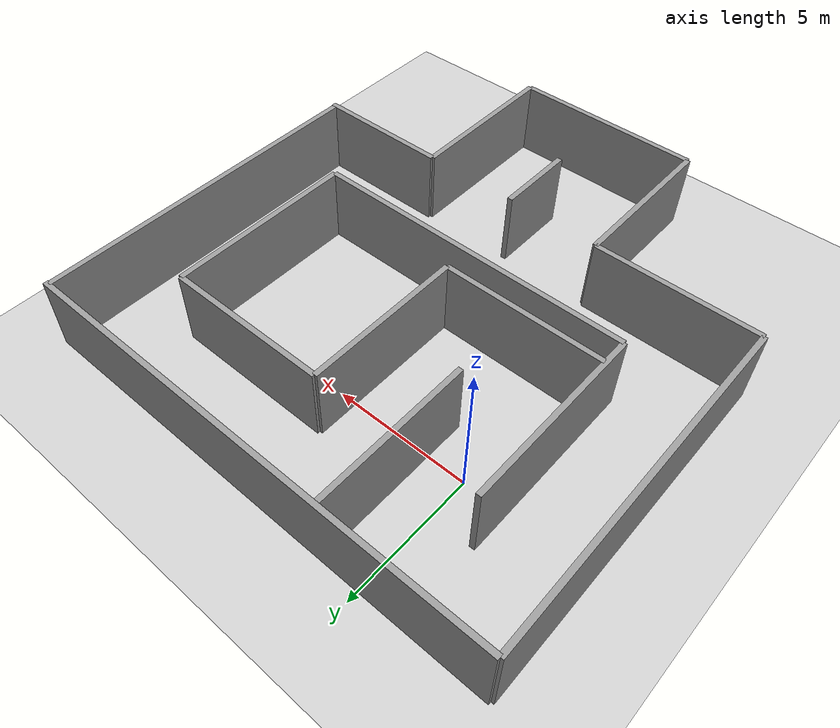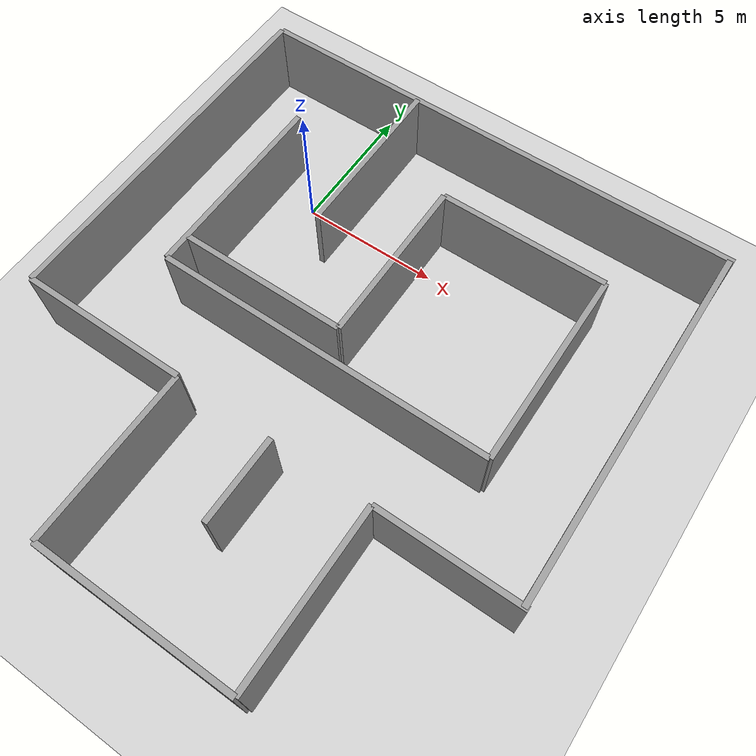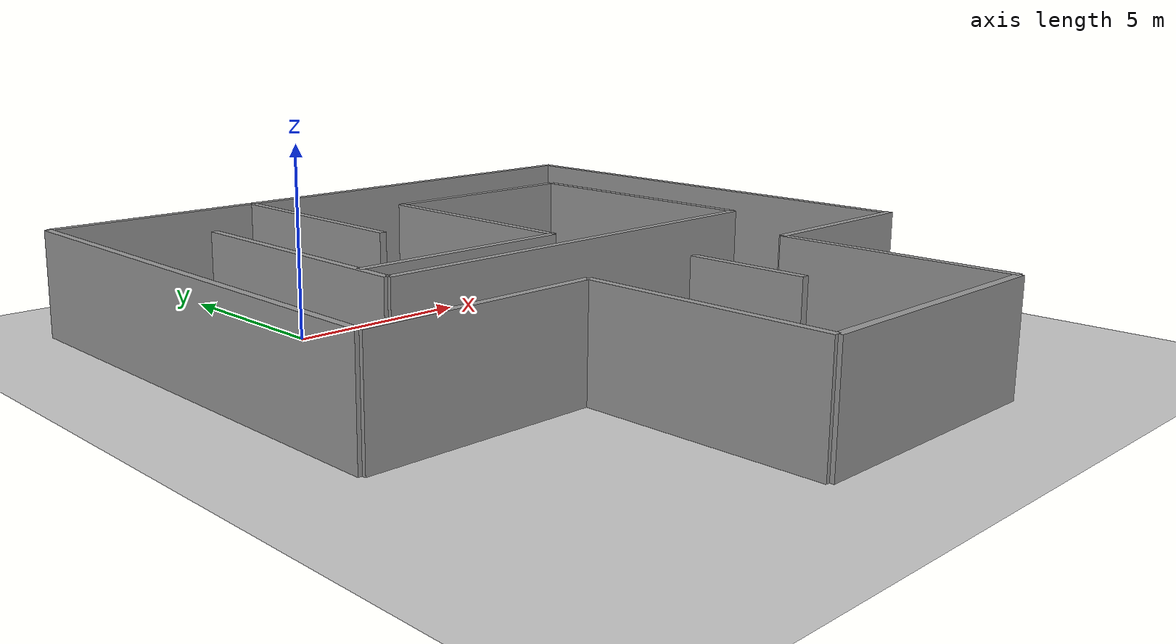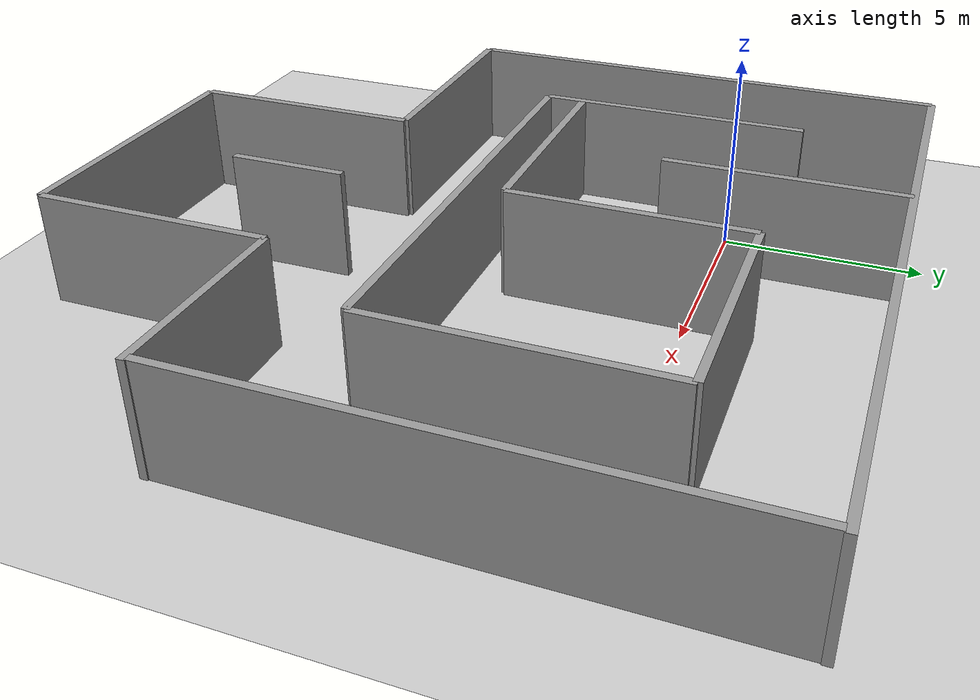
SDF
<sdf version="1.6">
 <world name="default">
  <light name="sun" type="directional">
   <pose>0 0 10 0 -0 -1.5708</pose>
   <diffuse>0.8 0.8 0.8 1</diffuse>
   <specular>0.2 0.2 0.2 1</specular>
   <attenuation>
    <range>1000</range>
    <constant>0.9</constant>
    <linear>0.01</linear>
    <quadratic>0.001</quadratic>
   </attenuation>
   <direction>-0.5 0.1 -0.9</direction>
  </light>
  <light name="user_point_light_0" type="point">
   <cast_shadows>0</cast_shadows>
   <pose>-8 -9 1 0 -0 -1.5708</pose>
   <diffuse>0.5 0.5 0.5 1</diffuse>
   <specular>0.1 0.1 0.1 1</specular>
   <attenuation>
    <range>20</range>
    <constant>0.5</constant>
    <linear>0.01</linear>
    <quadratic>0</quadratic>
   </attenuation>
   <direction>0 0 -1</direction>
  </light>
  <light name="user_point_light_1" type="point">
   <cast_shadows>0</cast_shadows>
   <pose>9 6 1 0 -0 -1.5708</pose>
   <diffuse>0.5 0.5 0.5 1</diffuse>
   <specular>0.1 0.1 0.1 1</specular>
   <attenuation>
    <range>20</range>
    <constant>0.5</constant>
    <linear>0.01</linear>
    <quadratic>0</quadratic>
   </attenuation>
   <direction>0 0 -1</direction>
  </light>
  <model name="ground_plane">
   <pose>0 0 0 0 0 -1.5708</pose>
   <static>1</static>
   <link name="link">
    <collision name="collision">
     <geometry><plane><normal>0 0 1</normal><size>100 100</size></plane></geometry>
     <surface><friction><ode><mu>100</mu><mu2>50</mu2></ode></friction></surface>
    </collision>
    <visual name="visual">
     <cast_shadows>0</cast_shadows>
     <geometry><plane><normal>0 0 1</normal><size>100 100</size></plane></geometry>
     <material>
      <script><uri>file://media/materials/scripts/gazebo.material</uri><name>Gazebo/Grey</name></script>
     </material>
    </visual>
    <velocity_decay><linear>0</linear><angular>0</angular></velocity_decay>
   </link>
  </model>
  <physics name="default_physics" default="0" type="ode">
   <max_step_size>0.001</max_step_size>
   <real_time_factor>1</real_time_factor>
   <real_time_update_rate>1000</real_time_update_rate>
  </physics>
  <scene><ambient>0.4 0.4 0.4 1</ambient><background>0.7 0.7 0.7 1</background><shadows>1</shadows></scene>
  <spherical_coordinates>
   <surface_model>EARTH_WGS84</surface_model>
   <latitude_deg>0</latitude_deg>
   <longitude_deg>0</longitude_deg>
   <elevation>0</elevation>
   <heading_deg>0</heading_deg>
  </spherical_coordinates>
  <model name="grey_wall">
   <pose>4.5 -1.5 0 0 -0 0</pose>
   <static>1</static>
   <link name="link">
    <pose>0 0 1.4 0 -0 -1.5708</pose>
    <collision name="collision"><geometry><box><size>6 0.2 2.8</size></box></geometry></collision>
    <visual name="visual">
     <cast_shadows>0</cast_shadows>
     <geometry><box><size>6 0.2 2.8</size></box></geometry>
     <material>
      <script>
       <uri>model://grey_wall/materials/scripts</uri>
       <uri>model://grey_wall/materials/textures</uri>
       <name>vrc/grey_wall</name>
      </script>
     </material>
    </visual>
    <velocity_decay><linear>0</linear><angular>0</angular></velocity_decay>
   </link>
  </model>
  <model name="grey_wall_0">
   <pose>-4.5 -2 0 0 -0 0</pose>
   <static>1</static>
   <link name="link">
    <pose>0 0 1.4 0 -0 -1.5708</pose>
    <collision name="collision"><geometry><box><size>13 0.2 2.8</size></box></geometry></collision>
    <visual name="visual">
     <cast_shadows>0</cast_shadows>
     <geometry><box><size>13 0.2 2.8</size></box></geometry>
     <material>
      <script>
       <uri>model://grey_wall/materials/scripts</uri>
       <uri>model://grey_wall/materials/textures</uri>
       <name>vrc/grey_wall13</name>
      </script>
     </material>
    </visual>
    <velocity_decay><linear>0</linear><angular>0</angular></velocity_decay>
   </link>
  </model>
  <model name="grey_wall_1">
   <pose>1.5 -4.5 0 0 -0 1.5708</pose>
   <static>1</static>
   <link name="link">
    <pose>0 0 1.4 0 -0 -1.5708</pose>
    <collision name="collision"><geometry><box><size>6 0.2 2.8</size></box></geometry></collision>
    <visual name="visual">
     <cast_shadows>0</cast_shadows>
     <geometry><box><size>6 0.2 2.8</size></box></geometry>
     <material>
      <script>
       <uri>model://grey_wall/materials/scripts</uri>
       <uri>model://grey_wall/materials/textures</uri>
       <name>vrc/grey_wall3</name>
      </script>
     </material>
    </visual>
    <velocity_decay><linear>0</linear><angular>0</angular></velocity_decay>
   </link>
  </model>
  <model name="grey_wall_2">
   <pose>-1.5 -2 0 0 -0 0</pose>
   <static>1</static>
   <link name="link">
    <pose>0 0 1.4 0 -0 -1.5708</pose>
    <collision name="collision"><geometry><box><size>7 0.2 2.8</size></box></geometry></collision>
    <visual name="visual">
     <cast_shadows>0</cast_shadows>
     <geometry><box><size>7 0.2 2.8</size></box></geometry>
     <material>
      <script>
       <uri>model://grey_wall/materials/scripts</uri>
       <uri>model://grey_wall/materials/textures</uri>
       <name>vrc/grey_wall1</name>
      </script>
     </material>
    </visual>
    <velocity_decay><linear>0</linear><angular>0</angular></velocity_decay>
   </link>
  </model>
  <model name="grey_wall_3">
   <pose>4.5 4.5 0 0 -0 1.5708</pose>
   <static>1</static>
   <link name="link">
    <pose>0 0 1.4 0 -0 -1.5708</pose>
    <collision name="collision"><geometry><box><size>18 0.2 2.8</size></box></geometry></collision>
    <visual name="visual">
     <cast_shadows>0</cast_shadows>
     <geometry><box><size>18 0.2 2.8</size></box></geometry>
     <material>
      <script>
       <uri>model://grey_wall/materials/scripts</uri>
       <uri>model://grey_wall/materials/textures</uri>
       <name>vrc/grey_wall12</name>
      </script>
     </material>
    </visual>
    <velocity_decay><linear>0</linear><angular>0</angular></velocity_decay>
   </link>
  </model>
  <model name="grey_wall_5">
   <pose>1.5 1.5 0 0 -0 0</pose>
   <static>1</static>
   <link name="link">
    <pose>0 0 1.4 0 -0 -1.5708</pose>
    <collision name="collision"><geometry><box><size>6 0.2 2.8</size></box></geometry></collision>
    <visual name="visual">
     <cast_shadows>0</cast_shadows>
     <geometry><box><size>6 0.2 2.8</size></box></geometry>
     <material>
      <script>
       <uri>model://grey_wall/materials/scripts</uri>
       <uri>model://grey_wall/materials/textures</uri>
       <name>vrc/grey_wall5</name>
      </script>
     </material>
    </visual>
    <velocity_decay><linear>0</linear><angular>0</angular></velocity_decay>
   </link>
  </model>
  <model name="grey_wall_6">
   <pose>7.5 1.5 0 0 -0 1.5708</pose>
   <static>1</static>
   <link name="link">
    <pose>0 0 1.4 0 -0 -1.5708</pose>
    <collision name="collision"><geometry><box><size>6 0.2 2.8</size></box></geometry></collision>
    <visual name="visual">
     <cast_shadows>0</cast_shadows>
     <geometry><box><size>6 0.2 2.8</size></box></geometry>
     <material>
      <script>
       <uri>model://grey_wall/materials/scripts</uri>
       <uri>model://grey_wall/materials/textures</uri>
       <name>vrc/grey_wall1</name>
      </script>
     </material>
    </visual>
    <velocity_decay><linear>0</linear><angular>0</angular></velocity_decay>
   </link>
  </model>
  <model name="grey_wall_7">
   <pose>10.5 -2 0 0 -0 0</pose>
   <static>1</static>
   <link name="link">
    <pose>0 0 1.4 0 -0 -1.5708</pose>
    <collision name="collision"><geometry><box><size>7 0.2 2.8</size></box></geometry></collision>
    <visual name="visual">
     <cast_shadows>0</cast_shadows>
     <geometry><box><size>7 0.2 2.8</size></box></geometry>
     <material>
      <script>
       <uri>model://grey_wall/materials/scripts</uri>
       <uri>model://grey_wall/materials/textures</uri>
       <name>vrc/grey_wall5</name>
      </script>
     </material>
    </visual>
    <velocity_decay><linear>0</linear><angular>0</angular></velocity_decay>
   </link>
  </model>
  <model name="grey_wall_8">
   <pose>13.3728 -2.0356 0 0 -0 0</pose>
   <static>1</static>
   <link name="link">
    <pose>0 0 1.4 0 -0 -1.5708</pose>
    <collision name="collision"><geometry><box><size>13 0.2 2.8</size></box></geometry></collision>
    <visual name="visual">
     <cast_shadows>0</cast_shadows>
     <geometry><box><size>13 0.2 2.8</size></box></geometry>
     <material>
      <script>
       <uri>model://grey_wall/materials/scripts</uri>
       <uri>model://grey_wall/materials/textures</uri>
       <name>vrc/grey_wall11</name>
      </script>
     </material>
    </visual>
    <velocity_decay><linear>0</linear><angular>0</angular></velocity_decay>
   </link>
  </model>
  <model name="grey_wall_9">
   <pose>4.5 -5.5 0 0 -0 1.5708</pose>
   <static>1</static>
   <link name="link">
    <pose>0 0 1.4 0 -0 -1.5708</pose>
    <collision name="collision"><geometry><box><size>12 0.2 2.8</size></box></geometry></collision>
    <visual name="visual">
     <cast_shadows>0</cast_shadows>
     <geometry><box><size>12 0.2 2.8</size></box></geometry>
     <material>
      <script>
       <uri>model://grey_wall/materials/scripts</uri>
       <uri>model://grey_wall/materials/textures</uri>
       <name>vrc/grey_wall6</name>
      </script>
     </material>
    </visual>
    <velocity_decay><linear>0</linear><angular>0</angular></velocity_decay>
   </link>
  </model>
  <model name="grey_wall_10">
   <pose>-1.5 -8.5 0 0 -0 1.5708</pose>
   <static>1</static>
   <link name="link">
    <pose>0 0 1.4 0 -0 -1.5708</pose>
    <collision name="collision"><geometry><box><size>6 0.2 2.8</size></box></geometry></collision>
    <visual name="visual">
     <cast_shadows>0</cast_shadows>
     <geometry><box><size>6 0.2 2.8</size></box></geometry>
     <material>
      <script>
       <uri>model://grey_wall/materials/scripts</uri>
       <uri>model://grey_wall/materials/textures</uri>
       <name>vrc/grey_wall7</name>
      </script>
     </material>
    </visual>
    <velocity_decay><linear>0</linear><angular>0</angular></velocity_decay>
   </link>
  </model>
  <model name="grey_wall_11">
   <pose>1.5 -11.5 0 0 -0 0</pose>
   <static>1</static>
   <link name="link">
    <pose>0 0 1.4 0 -0 -1.5708</pose>
    <collision name="collision"><geometry><box><size>6 0.2 2.8</size></box></geometry></collision>
    <visual name="visual">
     <cast_shadows>0</cast_shadows>
     <geometry><box><size>6 0.2 2.8</size></box></geometry>
     <material>
      <script>
       <uri>model://grey_wall/materials/scripts</uri>
       <uri>model://grey_wall/materials/textures</uri>
       <name>vrc/grey_wall9</name>
      </script>
     </material>
    </visual>
    <velocity_decay><linear>0</linear><angular>0</angular></velocity_decay>
   </link>
  </model>
  <model name="grey_wall_12">
   <pose>8.5 -11.5 0 0 -0 0</pose>
   <static>1</static>
   <link name="link">
    <pose>0 0 1.4 0 -0 -1.5708</pose>
    <collision name="collision"><geometry><box><size>6 0.2 2.8</size></box></geometry></collision>
    <visual name="visual">
     <cast_shadows>0</cast_shadows>
     <geometry><box><size>6 0.2 2.8</size></box></geometry>
     <material>
      <script>
       <uri>model://grey_wall/materials/scripts</uri>
       <uri>model://grey_wall/materials/textures</uri>
       <name>vrc/grey_wall8</name>
      </script>
     </material>
    </visual>
    <velocity_decay><linear>0</linear><angular>0</angular></velocity_decay>
   </link>
  </model>
  <model name="grey_wall_13">
   <pose>11 -8.5 0 0 -0 1.5708</pose>
   <static>1</static>
   <link name="link">
    <pose>0 0 1.4 0 -0 -1.5708</pose>
    <collision name="collision"><geometry><box><size>5 0.2 2.8</size></box></geometry></collision>
    <visual name="visual">
     <cast_shadows>0</cast_shadows>
     <geometry><box><size>5 0.2 2.8</size></box></geometry>
     <material>
      <script>
       <uri>model://grey_wall/materials/scripts</uri>
       <uri>model://grey_wall/materials/textures</uri>
       <name>vrc/grey_wall3</name>
      </script>
     </material>
    </visual>
    <velocity_decay><linear>0</linear><angular>0</angular></velocity_decay>
   </link>
  </model>
  <model name="grey_wall_14">
   <pose>5 -14.5 0 0 -0 1.5708</pose>
   <static>1</static>
   <link name="link">
    <pose>0 0 1.4 0 -0 -1.5708</pose>
    <collision name="collision"><geometry><box><size>7 0.2 2.8</size></box></geometry></collision>
    <visual name="visual">
     <cast_shadows>0</cast_shadows>
     <geometry><box><size>7 0.2 2.8</size></box></geometry>
     <material>
      <script>
       <uri>model://grey_wall/materials/scripts</uri>
       <uri>model://grey_wall/materials/textures</uri>
       <name>vrc/grey_wall2</name>
      </script>
     </material>
    </visual>
    <velocity_decay><linear>0</linear><angular>0</angular></velocity_decay>
   </link>
  </model>
  <model name="grey_wall_15">
   <pose>5 -10 0 0 -0 0</pose>
   <static>1</static>
   <link name="link">
    <pose>0 0 1.4 0 -0 -1.5708</pose>
    <collision name="collision"><geometry><box><size>3 0.2 2.8</size></box></geometry></collision>
    <visual name="visual">
     <cast_shadows>0</cast_shadows>
     <geometry><box><size>3 0.2 2.8</size></box></geometry>
     <material>
      <script>
       <uri>model://grey_wall/materials/scripts</uri>
       <uri>model://grey_wall/materials/textures</uri>
       <name>vrc/grey_wall</name>
      </script>
     </material>
    </visual>
    <velocity_decay><linear>0</linear><angular>0</angular></velocity_decay>
   </link>
  </model>
  <gravity>0 0 -9.8</gravity>
  <magnetic_field>6e-06 2.3e-05 -4.2e-05</magnetic_field>
  <atmosphere type="adiabatic"/>
 </world>
</sdf>
